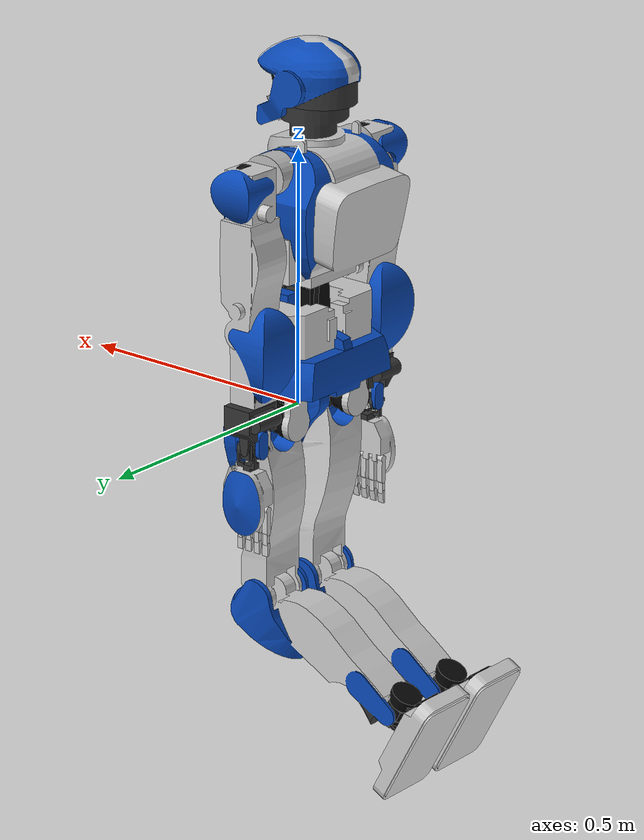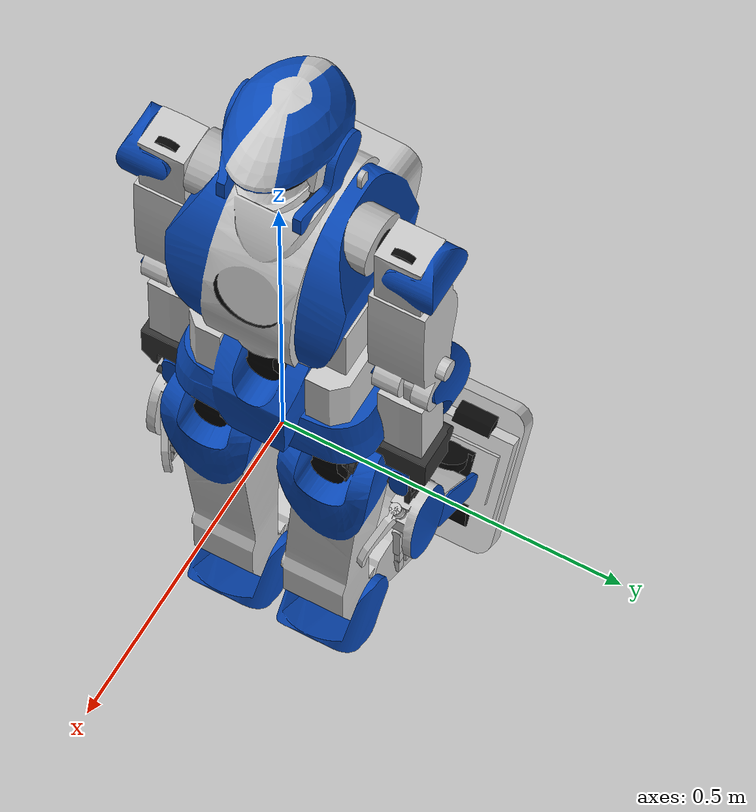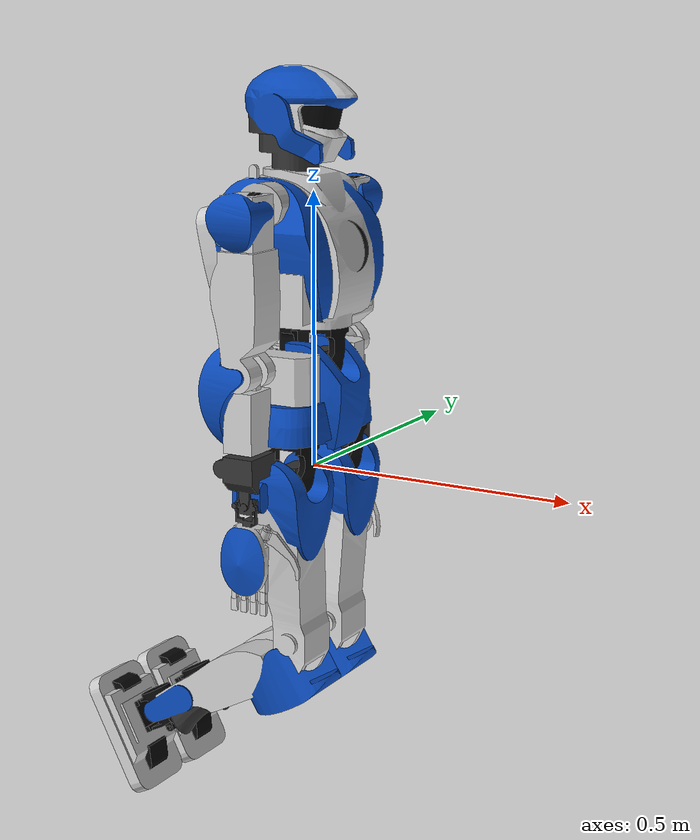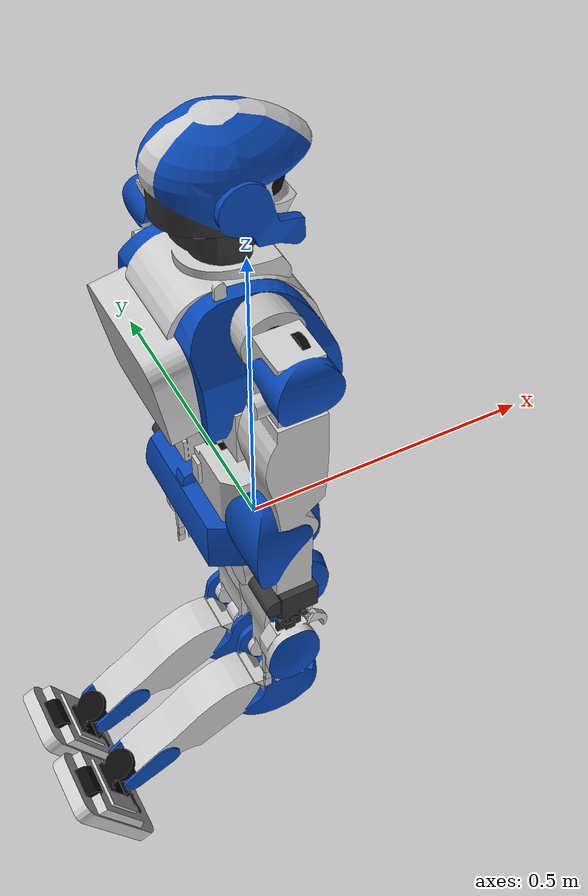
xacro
<?xml version="1.0"?>
<!--
   hrp4 URDF model

   FIXME: fill missing data: sole, gripper and sensors
  -->
<robot xmlns:xacro="http://ros.org/wiki/xacro" name="hrp4_flex">
  <xacro:include filename="$(find hrp4_description)/urdf/hrp4_common.xacro" />
  <xacro:include filename="$(find hrp4_description)/urdf/hrp4_fingers.xacro" />
  <xacro:include filename="$(find hrp4_description)/urdf/hrp4_feet_flex.xacro" />
</robot>

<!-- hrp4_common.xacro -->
<robot name="hrp4" xmlns:xacro="http://ros.org/wiki/xacro">
  <property name="M_PI" value="3.1415926535897931" />
  <link name="base_link"/>

  <link name="body">
    <inertial>
      <origin xyz="-0.0215609 0.00145914 0.14111505" rpy="0 0 0"/>
      <mass value="6.93472"/>
      <inertia ixx="0.05776087" ixy="7.331e-05" ixz="0.0014889" iyy="0.0285208" iyz="-0.00075717" izz="0.05527734" />
    </inertial>
    <visual>
      <origin xyz="0 0 0" rpy="0 0 0" />
      <geometry>
	<mesh filename="package://hrp4_description/meshes/WAIST_LINK.dae" />
      </geometry>
    </visual>
    <collision>
      <origin xyz="0 0 0" rpy="0 0 0" />
      <geometry>
	<mesh filename="package://hrp4_description/meshes/WAIST_LINK.dae" />
      </geometry>
    </collision>
  </link>

  <link name="R_HIP_Y_LINK">
    <inertial>
      <origin xyz="-0.01667657 2e-08 0.04993135" rpy="0 0 0"/>
      <mass value="1.1356"/>
      <inertia ixx="0.00151524" ixy="-2.8e-07" ixz="-0.00048566" iyy="0.00231285" iyz="-0" izz="0.00149651" />
    </inertial>
    <visual>
      <origin xyz="0 0 0" rpy="0 0 0" />
      <geometry>
	<mesh filename="package://hrp4_description/meshes/HIP_Y.dae" />
      </geometry>
    </visual>
    <collision>
      <origin xyz="0 0 0" rpy="0 0 0" />
      <geometry>
	<mesh filename="package://hrp4_description/meshes/HIP_Y.dae" />
      </geometry>
    </collision>
  </link>

  <link name="R_HIP_R_LINK">
    <inertial>
      <origin xyz="-0.00431692 0.00595121 -0.00052352" rpy="0 0 0"/>
      <mass value="0.58494148"/>
      <inertia ixx="0.00046475" ixy="-1.508e-05" ixz="-6.5e-07" iyy="0.00029804" iyz="2.39e-06" izz="0.00061763" />
    </inertial>
    <visual>
      <origin xyz="0 0 0" rpy="0 0 0" />
      <geometry>
	<mesh filename="package://hrp4_description/meshes/CHEST_P.dae" />
      </geometry>
    </visual>
    <collision>
      <origin xyz="0 0 0" rpy="0 0 0" />
      <geometry>
	<mesh filename="package://hrp4_description/meshes/CHEST_P.dae" />
      </geometry>
    </collision>
  </link>

  <link name="R_HIP_P_LINK">
    <inertial>
      <origin xyz="0.00401404 0.01530275 -0.18851723" rpy="0 0 0"/>
      <mass value="2.0648"/>
      <inertia ixx="0.03160432" ixy="-3.38e-06" ixz="0.00063965" iyy="0.03070237" iyz="0.00133966" izz="0.00275655" />
    </inertial>
    <visual>
      <origin xyz="0 0 0" rpy="0 0 0" />
      <geometry>
	<mesh filename="package://hrp4_description/meshes/R_HIP_P.dae" />
      </geometry>
    </visual>
    <collision>
      <origin xyz="0 0 0" rpy="0 0 0" />
      <geometry>
	<mesh filename="package://hrp4_description/meshes/R_HIP_P.dae" />
      </geometry>
    </collision>
  </link>

  <link name="R_KNEE_P_LINK">
    <inertial>
      <origin xyz="-0.01122115 -0.00133701 -0.15252868" rpy="0 0 0"/>
      <mass value="2.08123"/>
      <inertia ixx="0.01900442" ixy="-4.75e-06" ixz="-0.0014589" iyy="0.01944097" iyz="2.008e-05" izz="0.00189659" />
    </inertial>
    <visual>
      <origin xyz="0 0 0" rpy="0 0 0" />
      <geometry>
	<mesh filename="package://hrp4_description/meshes/R_KNEE_P.dae" />
      </geometry>
    </visual>
    <collision>
      <origin xyz="0 0 0" rpy="0 0 0" />
      <geometry>
	<mesh filename="package://hrp4_description/meshes/R_KNEE_P.dae" />
      </geometry>
    </collision>
  </link>

  <link name="R_ANKLE_P_LINK">
    <inertial>
      <origin xyz="-0.00368911 -0.00015844 0.00129883" rpy="0 0 0"/>
      <mass value="0.26784726"/>
      <inertia ixx="8.094e-05" ixy="-1.6e-07" ixz="-1.33e-06" iyy="0.00015522" iyz="-7e-08" izz="0.00017313" />
    </inertial>
    <visual>
      <origin xyz="0 0 0" rpy="0 0 0" />
      <geometry>
	<mesh filename="package://hrp4_description/meshes/L_ANKLE_P.dae" />
      </geometry>
    </visual>
    <collision>
      <origin xyz="0 0 0" rpy="0 0 0" />
      <geometry>
	<mesh filename="package://hrp4_description/meshes/L_ANKLE_P.dae" />
      </geometry>
    </collision>
  </link>

  <link name="R_ANKLE_R_LINK">
    <inertial>
      <origin xyz="-0.00340792 1e-08 -0.04591586" rpy="0 0 0"/>
      <mass value="0.72287828"/>
      <inertia ixx="0.00092215" ixy="0" ixz="0.00011963" iyy="0.00102289" iyz="0" izz="0.00089314" />
    </inertial>
    <visual>
      <origin xyz="0 0 0" rpy="0 0 0" />
      <geometry>
	<mesh filename="package://hrp4_description/meshes/R_ANKLE_R.dae" />
      </geometry>
    </visual>
    <collision>
      <origin xyz="0 0 0" rpy="0 0 0" />
      <geometry>
	<mesh filename="package://hrp4_description/meshes/R_ANKLE_R.dae" />
      </geometry>
    </collision>
  </link>

  <link name="r_sole"/>

  <link name="L_HIP_Y_LINK">
    <inertial>
      <origin xyz="-0.01667657 2e-08 0.04993135" rpy="0 0 0"/>
      <mass value="1.1356"/>
      <inertia ixx="0.00151524" ixy="-2.8e-07" ixz="-0.00048566" iyy="0.00231285" iyz="-0" izz="0.00149651" />
    </inertial>
    <visual>
      <origin xyz="0 0 0" rpy="0 0 0" />
      <geometry>
	<mesh filename="package://hrp4_description/meshes/HIP_Y.dae" />
      </geometry>
    </visual>
    <collision>
      <origin xyz="0 0 0" rpy="0 0 0" />
      <geometry>
	<mesh filename="package://hrp4_description/meshes/HIP_Y.dae" />
      </geometry>
    </collision>
  </link>

  <link name="L_HIP_R_LINK">
    <inertial>
      <origin xyz="-0.00431692 0.00595121 -0.00052352" rpy="0 0 0"/>
      <mass value="0.58494148"/>
      <inertia ixx="0.00046475" ixy="-1.508e-05" ixz="-6.5e-07" iyy="0.00029804" iyz="2.39e-06" izz="0.00061763" />
    </inertial>
    <visual>
      <origin xyz="0 0 0" rpy="0 0 0" />
      <geometry>
	<mesh filename="package://hrp4_description/meshes/CHEST_P.dae" />
      </geometry>
    </visual>
    <collision>
      <origin xyz="0 0 0" rpy="0 0 0" />
      <geometry>
	<mesh filename="package://hrp4_description/meshes/CHEST_P.dae" />
      </geometry>
    </collision>
  </link>

  <link name="L_HIP_P_LINK">
    <inertial>
      <origin xyz="0.00400906 -0.00541624 -0.18827632" rpy="0 0 0"/>
      <mass value="2.06366"/>
      <inertia ixx="0.03174381" ixy="9.784e-05" ixz="0.00063909" iyy="0.03068623" iyz="-0.00254187" izz="0.00291548" />
    </inertial>
    <visual>
      <origin xyz="0 0 0" rpy="0 0 0" />
      <geometry>
	<mesh filename="package://hrp4_description/meshes/L_HIP_P.dae" />
      </geometry>
    </visual>
    <collision>
      <origin xyz="0 0 0" rpy="0 0 0" />
      <geometry>
	<mesh filename="package://hrp4_description/meshes/L_HIP_P.dae" />
      </geometry>
    </collision>
  </link>

  <link name="L_KNEE_P_LINK">
    <inertial>
      <origin xyz="-0.01122115 -0.00133701 -0.15252868" rpy="0 0 0"/>
      <mass value="2.08123"/>
      <inertia ixx="0.01900442" ixy="-4.75e-06" ixz="-0.0014589" iyy="0.01944097" iyz="2.008e-05" izz="0.00189659" />
    </inertial>
    <visual>
      <origin xyz="0 0 0" rpy="0 0 0" />
      <geometry>
	<mesh filename="package://hrp4_description/meshes/L_KNEE_P.dae" />
      </geometry>
    </visual>
    <collision>
      <origin xyz="0 0 0" rpy="0 0 0" />
      <geometry>
	<mesh filename="package://hrp4_description/meshes/L_KNEE_P.dae" />
      </geometry>
    </collision>
  </link>

  <link name="L_ANKLE_P_LINK">
    <inertial>
      <origin xyz="-0.00368911 -0.00015844 0.00129883" rpy="0 0 0"/>
      <mass value="0.26784726"/>
      <inertia ixx="8.094e-05" ixy="-1.6e-07" ixz="-1.33e-06" iyy="0.00015522" iyz="-7e-08" izz="0.00017313" />
    </inertial>
    <visual>
      <origin xyz="0 0 0" rpy="0 0 0" />
      <geometry>
	<mesh filename="package://hrp4_description/meshes/L_ANKLE_P.dae" />
      </geometry>
    </visual>
    <collision>
      <origin xyz="0 0 0" rpy="0 0 0" />
      <geometry>
	<mesh filename="package://hrp4_description/meshes/L_ANKLE_P.dae" />
      </geometry>
    </collision>
  </link>

  <link name="L_ANKLE_R_LINK">
    <inertial>
      <origin xyz="-0.00340792 0 -0.04591586" rpy="0 0 0"/>
      <mass value="0.72287828"/>
      <inertia ixx="0.00092215" ixy="-0" ixz="0.00011963" iyy="0.00102289" iyz="-0" izz="0.00089314" />
    </inertial>
    <visual>
      <origin xyz="0 0 0" rpy="0 0 0" />
      <geometry>
	<mesh filename="package://hrp4_description/meshes/L_ANKLE_R.dae" />
      </geometry>
    </visual>
    <collision>
      <origin xyz="0 0 0" rpy="0 0 0" />
      <geometry>
	<mesh filename="package://hrp4_description/meshes/L_ANKLE_R.dae" />
      </geometry>
    </collision>
  </link>

  <link name="l_sole"/>

  <link name="CHEST_P_LINK">
    <inertial>
      <origin xyz="-0.00442006 0.00280574 0.03664874" rpy="0 0 0"/>
      <mass value="1.24072"/>
      <inertia ixx="0.00250228" ixy="-1.572e-05" ixz="-1.986e-05" iyy="0.00266086" iyz="0.00013179" izz="0.0015461" />
    </inertial>
    <visual>
      <origin xyz="0 0 0" rpy="0 0 0" />
      <geometry>
	<mesh filename="package://hrp4_description/meshes/CHEST_P.dae" />
      </geometry>
    </visual>
    <visual>
      <origin xyz="0 0 0" rpy="0 0 0" />
      <geometry>
	<mesh filename="package://hrp4_description/meshes/CHEST_R.dae" />
      </geometry>
    </visual>
    <collision>
      <origin xyz="0 0 0" rpy="0 0 0" />
      <geometry>
	<mesh filename="package://hrp4_description/meshes/CHEST_P.dae" />
      </geometry>
    </collision>
    <collision>
      <origin xyz="0 0 0" rpy="0 0 0" />
      <geometry>
	<mesh filename="package://hrp4_description/meshes/CHEST_P.dae" />
      </geometry>
    </collision>
  </link>

  <link name="torso">
    <inertial>
      <origin xyz="-0.02868847 -0.00245957 0.20400698" rpy="0 0 0"/>
      <mass value="6.67348"/>
      <inertia ixx="0.06656275" ixy="-9.681e-05" ixz="0.00599103" iyy="0.05508979" iyz="-0.00017557" izz="0.04262738" />
    </inertial>
    <visual>
      <origin xyz="0 0 0" rpy="0 0 0" />
      <geometry>
	<mesh filename="package://hrp4_description/meshes/CHEST_Y.dae" />
      </geometry>
    </visual>
    <collision>
      <origin xyz="0 0 0" rpy="0 0 0" />
      <geometry>
	<mesh filename="package://hrp4_description/meshes/CHEST_Y.dae" />
      </geometry>
    </collision>
  </link>

  <link name="NECK_Y_LINK">
    <inertial>
      <origin xyz="-0.01142441 0.00157484 -0.02134892" rpy="0 0 0"/>
      <mass value="0.41214752"/>
      <inertia ixx="0.00061014" ixy="4.35e-06" ixz="7.329e-05" iyy="0.00068918" iyz="-1.384e-05" izz="0.00040587" />
    </inertial>
    <visual>
      <origin xyz="0 0 0" rpy="0 0 0" />
      <geometry>
	<mesh filename="package://hrp4_description/meshes/NECK_Y.dae" />
      </geometry>
    </visual>
    <collision>
      <origin xyz="0 0 0" rpy="0 0 0" />
      <geometry>
	<mesh filename="package://hrp4_description/meshes/NECK_Y.dae" />
      </geometry>
    </collision>
  </link>

  <link name="NECK_P_LINK">
    <inertial>
      <origin xyz="0.00532833 -0.00053047 0.0176936" rpy="0 0 0"/>
      <mass value="0.22297511"/>
      <inertia ixx="0.00069884" ixy="-7e-07" ixz="3.33e-05" iyy="0.00093286" iyz="-1.51e-06" izz="0.00100342" />
    </inertial>
    <visual>
      <origin xyz="0 0 0" rpy="0 0 0" />
      <geometry>
	<mesh filename="package://hrp4_description/meshes/NECK_P.dae" />
      </geometry>
    </visual>
    <collision>
      <origin xyz="0 0 0" rpy="0 0 0" />
      <geometry>
	<mesh filename="package://hrp4_description/meshes/NECK_P.dae" />
      </geometry>
    </collision>
  </link>

  <link name="xtion_link"/>

  <link name="R_SHOULDER_P_LINK">
    <inertial>
      <origin xyz="0.00141599 0.04257567 0.00031503" rpy="0 0 0"/>
      <mass value="0.42049079"/>
      <inertia ixx="0.00044203" ixy="-4.93e-06" ixz="-6.1e-07" iyy="0.00014181" iyz="-3.34e-06" izz="0.00044502" />
    </inertial>
    <visual>
      <origin xyz="0 0 0" rpy="0 0 0" />
      <geometry>
	<mesh filename="package://hrp4_description/meshes/R_SHOULDER_P.dae" />
      </geometry>
    </visual>
    <collision>
      <origin xyz="0 0 0" rpy="0 0 0" />
      <geometry>
	<mesh filename="package://hrp4_description/meshes/R_SHOULDER_P.dae" />
      </geometry>
    </collision>
  </link>

  <link name="R_SHOULDER_R_LINK">
    <inertial>
      <origin xyz="0.00019752 -0.00272557 -0.04191141" rpy="0 0 0"/>
      <mass value="0.52070922"/>
      <inertia ixx="0.00062647" ixy="-7.3e-06" ixz="-6.476e-05" iyy="0.00071812" iyz="1.818e-05" izz="0.00029856" />
    </inertial>
    <visual>
      <origin xyz="0 0 0" rpy="0 0 0" />
      <geometry>
	<mesh filename="package://hrp4_description/meshes/R_SHOULDER_R.dae" />
      </geometry>
    </visual>
    <collision>
      <origin xyz="0 0 0" rpy="0 0 0" />
      <geometry>
	<mesh filename="package://hrp4_description/meshes/R_SHOULDER_R.dae" />
      </geometry>
    </collision>
  </link>

  <link name="R_SHOULDER_Y_LINK">
    <inertial>
      <origin xyz="-0.00273859 -0.00036268 -0.17426645" rpy="0 0 0"/>
      <mass value="1.0874"/>
      <inertia ixx="0.00553694" ixy="1.18e-05" ixz="-4.295e-05" iyy="0.00556222" iyz="-9.379e-05" izz="0.00071841" />
    </inertial>
    <visual>
      <origin xyz="0 0 0" rpy="0 0 0" />
      <geometry>
	<mesh filename="package://hrp4_description/meshes/SHOULDER_Y.dae" />
      </geometry>
    </visual>
    <collision>
      <origin xyz="0 0 0" rpy="0 0 0" />
      <geometry>
	<mesh filename="package://hrp4_description/meshes/SHOULDER_Y.dae" />
      </geometry>
    </collision>
  </link>

  <link name="R_ELBOW_P_LINK">
    <inertial>
      <origin xyz="-0.01222096 0.00049299 -0.07271909" rpy="0 0 0"/>
      <mass value="0.6594031"/>
      <inertia ixx="0.00121955" ixy="3.9e-06" ixz="4.22e-05" iyy="0.00135563" iyz="-1.497e-05" izz="0.00047041" />
    </inertial>
    <visual>
      <origin xyz="0 0 0" rpy="0 0 0" />
      <geometry>
	<mesh filename="package://hrp4_description/meshes/ELBOW_P.dae" />
      </geometry>
    </visual>
    <collision>
      <origin xyz="0 0 0" rpy="0 0 0" />
      <geometry>
	<mesh filename="package://hrp4_description/meshes/ELBOW_P.dae" />
      </geometry>
    </collision>
  </link>

  <link name="R_WRIST_Y_LINK">
    <inertial>
      <origin xyz="-0.00749481 9.419e-05 -0.17044123" rpy="0 0 0"/>
      <mass value="0.38384092"/>
      <inertia ixx="0.00027044" ixy="-9.74e-06" ixz="1.069e-05" iyy="0.00027334" iyz="1.745e-05" izz="0.00022347" />
    </inertial>
    <visual>
      <origin xyz="0 0 0" rpy="0 0 0" />
      <geometry>
	<mesh filename="package://hrp4_description/meshes/R_WRIST_Y.dae" />
      </geometry>
    </visual>
    <collision>
      <origin xyz="0 0 0" rpy="0 0 0" />
      <geometry>
	<mesh filename="package://hrp4_description/meshes/R_WRIST_Y.dae" />
      </geometry>
    </collision>
  </link>

  <link name="R_WRIST_P_LINK">
    <inertial>
      <origin xyz="0.00255098 0.00162183 0.01074678" rpy="0 0 0"/>
      <mass value="0.25425855"/>
      <inertia ixx="8.763e-05" ixy="1.53e-06" ixz="-3.48e-06" iyy="9.159e-05" iyz="4.48e-06" izz="5.571e-05" />
    </inertial>
    <visual>
      <origin xyz="0 0 0" rpy="0 0 0" />
      <geometry>
	<mesh filename="package://hrp4_description/meshes/WRIST_P.dae" />
      </geometry>
    </visual>
    <collision>
      <origin xyz="0 0 0" rpy="0 0 0" />
      <geometry>
	<mesh filename="package://hrp4_description/meshes/WRIST_P.dae" />
      </geometry>
    </collision>
  </link>

  <link name="r_wrist">
    <inertial>
      <origin xyz="-0.00357307 -0.00756083 -0.07562434" rpy="0 0 0"/>
      <mass value="0.38811052"/>
      <inertia ixx="0.00041744" ixy="-2.58e-06" ixz="-3.079e-05" iyy="0.00053272" iyz="-4.178e-05" izz="0.00022506" />
    </inertial>
    <visual>
      <origin xyz="0 0 0" rpy="0 0 0" />
      <geometry>
	<mesh filename="package://hrp4_description/meshes/R_WRIST_R.dae" />
      </geometry>
    </visual>
    <collision>
      <origin xyz="0 0 0" rpy="0 0 0" />
      <geometry>
	<mesh filename="package://hrp4_description/meshes/R_WRIST_R.dae" />
      </geometry>
    </collision>
  </link>

  <link name="R_HAND_J0_LINK">
    <inertial>
      <origin xyz="0.03905018 0.0103447 -0.02583122" rpy="0 0 0"/>
      <mass value="0.02982352"/>
      <inertia ixx="1.307e-05" ixy="-6.2e-06" ixz="1.249e-05" iyy="2.885e-05" iyz="4.36e-06" izz="2.119e-05" />
    </inertial>
    <visual>
      <origin xyz="0 0 0" rpy="0 0 0" />
      <geometry>
	<mesh filename="package://hrp4_description/meshes/R_THUMB.dae" />
      </geometry>
    </visual>
    <collision>
      <origin xyz="0 0 0" rpy="0 0 0" />
      <geometry>
	<mesh filename="package://hrp4_description/meshes/R_THUMB.dae" />
      </geometry>
    </collision>
  </link>

  <link name="R_HAND_J1_LINK">
    <inertial>
      <origin xyz="-0.00520681 -8.854e-05 -0.01902284" rpy="0 0 0"/>
      <mass value="0.07696483"/>
      <inertia ixx="2.17e-05" ixy="-3e-08" ixz="-2.2e-07" iyy="5.741e-05" iyz="1e-07" izz="3.728e-05" />
    </inertial>
    <visual>
      <origin xyz="0 0 0" rpy="0 0 0" />
      <geometry>
	<mesh filename="package://hrp4_description/meshes/R_F1.dae" />
      </geometry>
    </visual>
    <collision>
      <origin xyz="0 0 0" rpy="0 0 0" />
      <geometry>
	<mesh filename="package://hrp4_description/meshes/R_F1.dae" />
      </geometry>
    </collision>
  </link>

  <link name="R_F22_LINK">
    <inertial>
      <origin xyz="-0.00031853 0.00034526 -0.01168186" rpy="0 0 0"/>
      <mass value="0.00446884"/>
      <inertia ixx="3.2e-07" ixy="-0" ixz="-0" iyy="3.4e-07" iyz="-0" izz="9e-08" />
    </inertial>
    <visual>
      <origin xyz="0 0 0" rpy="0 0 0" />
      <geometry>
	<mesh filename="package://hrp4_description/meshes/F2.dae" />
      </geometry>
    </visual>
    <collision>
      <origin xyz="0 0 0" rpy="0 0 0" />
      <geometry>
	<mesh filename="package://hrp4_description/meshes/F2.dae" />
      </geometry>
    </collision>
  </link>

  <link name="R_F23_LINK">
    <inertial>
      <origin xyz="-0.00035576 -0.00103228 -0.00714888" rpy="0 0 0"/>
      <mass value="0.0028745"/>
      <inertia ixx="1.6e-07" ixy="0" ixz="1e-08" iyy="2.1e-07" iyz="-2e-08" izz="7e-08" />
    </inertial>
    <visual>
      <origin xyz="0 0 0" rpy="0 0 0" />
      <geometry>
	<mesh filename="package://hrp4_description/meshes/F3.dae" />
      </geometry>
    </visual>
    <collision>
      <origin xyz="0 0 0" rpy="0 0 0" />
      <geometry>
	<mesh filename="package://hrp4_description/meshes/F3.dae" />
      </geometry>
    </collision>
  </link>

  <link name="R_F32_LINK">
    <inertial>
      <origin xyz="-0.00031853 0.00034526 -0.01168186" rpy="0 0 0"/>
      <mass value="0.00446884"/>
      <inertia ixx="3.2e-07" ixy="-0" ixz="-0" iyy="3.4e-07" iyz="-0" izz="9e-08" />
    </inertial>
    <visual>
      <origin xyz="0 0 0" rpy="0 0 0" />
      <geometry>
	<mesh filename="package://hrp4_description/meshes/F2.dae" />
      </geometry>
    </visual>
    <collision>
      <origin xyz="0 0 0" rpy="0 0 0" />
      <geometry>
	<mesh filename="package://hrp4_description/meshes/F2.dae" />
      </geometry>
    </collision>
  </link>

  <link name="R_F33_LINK">
    <inertial>
      <origin xyz="-0.00035576 -0.00103228 -0.00714888" rpy="0 0 0"/>
      <mass value="0.0028745"/>
      <inertia ixx="1.6e-07" ixy="0" ixz="1e-08" iyy="2.1e-07" iyz="-2e-08" izz="7e-08" />
    </inertial>
    <visual>
      <origin xyz="0 0 0" rpy="0 0 0" />
      <geometry>
	<mesh filename="package://hrp4_description/meshes/F3.dae" />
      </geometry>
    </visual>
    <collision>
      <origin xyz="0 0 0" rpy="0 0 0" />
      <geometry>
	<mesh filename="package://hrp4_description/meshes/F3.dae" />
      </geometry>
    </collision>
  </link>

  <link name="R_F42_LINK">
    <inertial>
      <origin xyz="-0.00031853 0.00034526 -0.01168186" rpy="0 0 0"/>
      <mass value="0.00446884"/>
      <inertia ixx="3.2e-07" ixy="-0" ixz="-0" iyy="3.4e-07" iyz="-0" izz="9e-08" />
    </inertial>
    <visual>
      <origin xyz="0 0 0" rpy="0 0 0" />
      <geometry>
	<mesh filename="package://hrp4_description/meshes/F2.dae" />
      </geometry>
    </visual>
    <collision>
      <origin xyz="0 0 0" rpy="0 0 0" />
      <geometry>
	<mesh filename="package://hrp4_description/meshes/F2.dae" />
      </geometry>
    </collision>
  </link>

  <link name="R_F43_LINK">
    <inertial>
      <origin xyz="-0.00035576 -0.00103228 -0.00714888" rpy="0 0 0"/>
      <mass value="0.0028745"/>
      <inertia ixx="1.6e-07" ixy="0" ixz="1e-08" iyy="2.1e-07" iyz="-2e-08" izz="7e-08" />
    </inertial>
    <visual>
      <origin xyz="0 0 0" rpy="0 0 0" />
      <geometry>
	<mesh filename="package://hrp4_description/meshes/F3.dae" />
      </geometry>
    </visual>
    <collision>
      <origin xyz="0 0 0" rpy="0 0 0" />
      <geometry>
	<mesh filename="package://hrp4_description/meshes/F3.dae" />
      </geometry>
    </collision>
  </link>

  <link name="R_F52_LINK">
    <inertial>
      <origin xyz="-0.00031853 0.00034526 -0.01168186" rpy="0 0 0"/>
      <mass value="0.00446884"/>
      <inertia ixx="3.2e-07" ixy="-0" ixz="-0" iyy="3.4e-07" iyz="-0" izz="9e-08" />
    </inertial>
    <visual>
      <origin xyz="0 0 0" rpy="0 0 0" />
      <geometry>
	<mesh filename="package://hrp4_description/meshes/F2.dae" />
      </geometry>
    </visual>
    <collision>
      <origin xyz="0 0 0" rpy="0 0 0" />
      <geometry>
	<mesh filename="package://hrp4_description/meshes/F2.dae" />
      </geometry>
    </collision>
  </link>

  <link name="R_F53_LINK">
    <inertial>
      <origin xyz="-0.00035576 -0.00103228 -0.00714888" rpy="0 0 0"/>
      <mass value="0.0028745"/>
      <inertia ixx="1.6e-07" ixy="0" ixz="1e-08" iyy="2.1e-07" iyz="-2e-08" izz="7e-08" />
    </inertial>
    <visual>
      <origin xyz="0 0 0" rpy="0 0 0" />
      <geometry>
	<mesh filename="package://hrp4_description/meshes/F3.dae" />
      </geometry>
    </visual>
    <collision>
      <origin xyz="0 0 0" rpy="0 0 0" />
      <geometry>
	<mesh filename="package://hrp4_description/meshes/F3.dae" />
      </geometry>
    </collision>
  </link>

  <link name="L_SHOULDER_P_LINK">
    <inertial>
      <origin xyz="0.00141599 -0.04257567 -0.00031503" rpy="0 0 0"/>
      <mass value="0.42049079"/>
      <inertia ixx="0.00044203" ixy="4.93e-06" ixz="6.1e-07" iyy="0.00014181" iyz="-3.34e-06" izz="0.00044502" />
    </inertial>
    <visual>
      <origin xyz="0 0 0" rpy="0 0 0" />
      <geometry>
	<mesh filename="package://hrp4_description/meshes/L_SHOULDER_P.dae" />
      </geometry>
    </visual>
    <collision>
      <origin xyz="0 0 0" rpy="0 0 0" />
      <geometry>
	<mesh filename="package://hrp4_description/meshes/L_SHOULDER_P.dae" />
      </geometry>
    </collision>
  </link>

  <link name="L_SHOULDER_R_LINK">
    <inertial>
      <origin xyz="0.00019752 -8.916e-05 -0.04191141" rpy="0 0 0"/>
      <mass value="0.52070922"/>
      <inertia ixx="0.00063033" ixy="-6.01e-06" ixz="-6.476e-05" iyy="0.00071812" iyz="-2.895e-05" izz="0.00030242" />
    </inertial>
    <visual>
      <origin xyz="0 0 0" rpy="0 0 0" />
      <geometry>
	<mesh filename="package://hrp4_description/meshes/L_SHOULDER_R.dae" />
      </geometry>
    </visual>
    <collision>
      <origin xyz="0 0 0" rpy="0 0 0" />
      <geometry>
	<mesh filename="package://hrp4_description/meshes/L_SHOULDER_R.dae" />
      </geometry>
    </collision>
  </link>

  <link name="L_SHOULDER_Y_LINK">
    <inertial>
      <origin xyz="-0.00273859 -0.00036268 -0.17426645" rpy="0 0 0"/>
      <mass value="1.0874"/>
      <inertia ixx="0.00553694" ixy="1.18e-05" ixz="-4.295e-05" iyy="0.00556222" iyz="-9.379e-05" izz="0.00071841" />
    </inertial>
    <visual>
      <origin xyz="0 0 0" rpy="0 0 0" />
      <geometry>
	<mesh filename="package://hrp4_description/meshes/SHOULDER_Y.dae" />
      </geometry>
    </visual>
    <collision>
      <origin xyz="0 0 0" rpy="0 0 0" />
      <geometry>
	<mesh filename="package://hrp4_description/meshes/SHOULDER_Y.dae" />
      </geometry>
    </collision>
  </link>

  <link name="L_ELBOW_P_LINK">
    <inertial>
      <origin xyz="-0.01222096 0.00049299 -0.07271909" rpy="0 0 0"/>
      <mass value="0.6594031"/>
      <inertia ixx="0.00121955" ixy="3.9e-06" ixz="4.22e-05" iyy="0.00135563" iyz="-1.497e-05" izz="0.00047041" />
    </inertial>
    <visual>
      <origin xyz="0 0 0" rpy="0 0 0" />
      <geometry>
	<mesh filename="package://hrp4_description/meshes/ELBOW_P.dae" />
      </geometry>
    </visual>
    <collision>
      <origin xyz="0 0 0" rpy="0 0 0" />
      <geometry>
	<mesh filename="package://hrp4_description/meshes/ELBOW_P.dae" />
      </geometry>
    </collision>
  </link>

  <link name="L_WRIST_Y_LINK">
    <inertial>
      <origin xyz="-0.00749574 -9.418e-05 -0.17044123" rpy="0 0 0"/>
      <mass value="0.38384092"/>
      <inertia ixx="0.00027044" ixy="9.76e-06" ixz="1.07e-05" iyy="0.00027334" iyz="-1.745e-05" izz="0.00022346" />
    </inertial>
    <visual>
      <origin xyz="0 0 0" rpy="0 0 0" />
      <geometry>
	<mesh filename="package://hrp4_description/meshes/L_WRIST_Y.dae" />
      </geometry>
    </visual>
    <collision>
      <origin xyz="0 0 0" rpy="0 0 0" />
      <geometry>
	<mesh filename="package://hrp4_description/meshes/L_WRIST_Y.dae" />
      </geometry>
    </collision>
  </link>

  <link name="L_WRIST_P_LINK">
    <inertial>
      <origin xyz="-0.00255098 -0.00162183 0.01074678" rpy="0 0 0"/>
      <mass value="0.25425855"/>
      <inertia ixx="8.763e-05" ixy="1.53e-06" ixz="3.48e-06" iyy="9.159e-05" iyz="-4.48e-06" izz="5.571e-05" />
    </inertial>
    <visual>
      <origin xyz="0 0 0" rpy="0 0 0" />
      <geometry>
	<mesh filename="package://hrp4_description/meshes/WRIST_P.dae" />
      </geometry>
    </visual>
    <collision>
      <origin xyz="0 0 0" rpy="0 0 0" />
      <geometry>
	<mesh filename="package://hrp4_description/meshes/WRIST_P.dae" />
      </geometry>
    </collision>
  </link>

  <link name="l_wrist">
    <inertial>
      <origin xyz="-0.00241915 0.00756006 -0.07562466" rpy="0 0 0"/>
      <mass value="0.38811052"/>
      <inertia ixx="0.00041745" ixy="4.71e-06" ixz="-6.41e-05" iyy="0.00053559" iyz="4.177e-05" izz="0.00022792" />
    </inertial>
    <visual>
      <origin xyz="0 0 0" rpy="0 0 0" />
      <geometry>
	<mesh filename="package://hrp4_description/meshes/L_WRIST_R.dae" />
      </geometry>
    </visual>
    <collision>
      <origin xyz="0 0 0" rpy="0 0 0" />
      <geometry>
	<mesh filename="package://hrp4_description/meshes/L_WRIST_R.dae" />
      </geometry>
    </collision>
  </link>

  <link name="L_HAND_J0_LINK">
    <inertial>
      <origin xyz="0.03905018 -0.0103447 -0.02583122" rpy="0 0 0"/>
      <mass value="0.02982352"/>
      <inertia ixx="1.307e-05" ixy="6.2e-06" ixz="1.249e-05" iyy="2.885e-05" iyz="-4.36e-06" izz="2.119e-05" />
    </inertial>
    <visual>
      <origin xyz="0 0 0" rpy="0 0 0" />
      <geometry>
	<mesh filename="package://hrp4_description/meshes/L_THUMB.dae" />
      </geometry>
    </visual>
    <collision>
      <origin xyz="0 0 0" rpy="0 0 0" />
      <geometry>
	<mesh filename="package://hrp4_description/meshes/L_THUMB.dae" />
      </geometry>
    </collision>
  </link>

  <link name="L_HAND_J1_LINK">
    <inertial>
      <origin xyz="-0.00479332 8.854e-05 -0.01902284" rpy="0 0 0"/>
      <mass value="0.07696483"/>
      <inertia ixx="2.17e-05" ixy="-3e-08" ixz="2.3e-07" iyy="5.741e-05" iyz="-1e-07" izz="3.728e-05" />
    </inertial>
    <visual>
      <origin xyz="0 0 0" rpy="0 0 0" />
      <geometry>
	<mesh filename="package://hrp4_description/meshes/L_F1.dae" />
      </geometry>
    </visual>
    <collision>
      <origin xyz="0 0 0" rpy="0 0 0" />
      <geometry>
	<mesh filename="package://hrp4_description/meshes/L_F1.dae" />
      </geometry>
    </collision>
  </link>

  <link name="L_F22_LINK">
    <inertial>
      <origin xyz="0.00031853 -0.00034526 -0.01168186" rpy="0 0 0"/>
      <mass value="0.00446884"/>
      <inertia ixx="3.2e-07" ixy="-0" ixz="0" iyy="3.4e-07" iyz="0" izz="9e-08" />
    </inertial>
    <visual>
      <origin xyz="0 0 0" rpy="0 0 0" />
      <geometry>
	<mesh filename="package://hrp4_description/meshes/F2.dae" />
      </geometry>
    </visual>
    <collision>
      <origin xyz="0 0 0" rpy="0 0 0" />
      <geometry>
	<mesh filename="package://hrp4_description/meshes/F2.dae" />
      </geometry>
    </collision>
  </link>

  <link name="L_F23_LINK">
    <inertial>
      <origin xyz="0.00035576 0.00103228 -0.00714888" rpy="0 0 0"/>
      <mass value="0.0028745"/>
      <inertia ixx="1.6e-07" ixy="0" ixz="-1e-08" iyy="2.1e-07" iyz="2e-08" izz="7e-08" />
    </inertial>
    <visual>
      <origin xyz="0 0 0" rpy="0 0 0" />
      <geometry>
	<mesh filename="package://hrp4_description/meshes/F3.dae" />
      </geometry>
    </visual>
    <collision>
      <origin xyz="0 0 0" rpy="0 0 0" />
      <geometry>
	<mesh filename="package://hrp4_description/meshes/F3.dae" />
      </geometry>
    </collision>
  </link>

  <link name="L_F32_LINK">
    <inertial>
      <origin xyz="0.00031853 -0.00034526 -0.01168186" rpy="0 0 0"/>
      <mass value="0.00446884"/>
      <inertia ixx="3.2e-07" ixy="-0" ixz="0" iyy="3.4e-07" iyz="0" izz="9e-08" />
    </inertial>
    <visual>
      <origin xyz="0 0 0" rpy="0 0 0" />
      <geometry>
	<mesh filename="package://hrp4_description/meshes/F2.dae" />
      </geometry>
    </visual>
    <collision>
      <origin xyz="0 0 0" rpy="0 0 0" />
      <geometry>
	<mesh filename="package://hrp4_description/meshes/F2.dae" />
      </geometry>
    </collision>
  </link>

  <link name="L_F33_LINK">
    <inertial>
      <origin xyz="0.00035576 0.00103228 -0.00714888" rpy="0 0 0"/>
      <mass value="0.0028745"/>
      <inertia ixx="1.6e-07" ixy="0" ixz="-1e-08" iyy="2.1e-07" iyz="2e-08" izz="7e-08" />
    </inertial>
    <visual>
      <origin xyz="0 0 0" rpy="0 0 0" />
      <geometry>
	<mesh filename="package://hrp4_description/meshes/F3.dae" />
      </geometry>
    </visual>
    <collision>
      <origin xyz="0 0 0" rpy="0 0 0" />
      <geometry>
	<mesh filename="package://hrp4_description/meshes/F3.dae" />
      </geometry>
    </collision>
  </link>

  <link name="L_F42_LINK">
    <inertial>
      <origin xyz="0.00031853 -0.00034526 -0.01168186" rpy="0 0 0"/>
      <mass value="0.00446884"/>
      <inertia ixx="3.2e-07" ixy="-0" ixz="0" iyy="3.4e-07" iyz="0" izz="9e-08" />
    </inertial>
    <visual>
      <origin xyz="0 0 0" rpy="0 0 0" />
      <geometry>
	<mesh filename="package://hrp4_description/meshes/F2.dae" />
      </geometry>
    </visual>
    <collision>
      <origin xyz="0 0 0" rpy="0 0 0" />
      <geometry>
	<mesh filename="package://hrp4_description/meshes/F2.dae" />
      </geometry>
    </collision>
  </link>

  <link name="L_F43_LINK">
    <inertial>
      <origin xyz="0.00035576 0.00103228 -0.00714888" rpy="0 0 0"/>
      <mass value="0.0028745"/>
      <inertia ixx="1.6e-07" ixy="0" ixz="-1e-08" iyy="2.1e-07" iyz="2e-08" izz="7e-08" />
    </inertial>
    <visual>
      <origin xyz="0 0 0" rpy="0 0 0" />
      <geometry>
	<mesh filename="package://hrp4_description/meshes/F3.dae" />
      </geometry>
    </visual>
    <collision>
      <origin xyz="0 0 0" rpy="0 0 0" />
      <geometry>
	<mesh filename="package://hrp4_description/meshes/F3.dae" />
      </geometry>
    </collision>
  </link>

  <link name="L_F52_LINK">
    <inertial>
      <origin xyz="0.00031853 -0.00034526 -0.01168186" rpy="0 0 0"/>
      <mass value="0.00446884"/>
      <inertia ixx="3.2e-07" ixy="-0" ixz="0" iyy="3.4e-07" iyz="0" izz="9e-08" />
    </inertial>
    <visual>
      <origin xyz="0 0 0" rpy="0 0 0" />
      <geometry>
	<mesh filename="package://hrp4_description/meshes/F2.dae" />
      </geometry>
    </visual>
    <collision>
      <origin xyz="0 0 0" rpy="0 0 0" />
      <geometry>
	<mesh filename="package://hrp4_description/meshes/F2.dae" />
      </geometry>
    </collision>
  </link>

  <link name="L_F53_LINK">
    <inertial>
      <origin xyz="0.00035576 0.00103228 -0.00714888" rpy="0 0 0"/>
      <mass value="0.0028745"/>
      <inertia ixx="1.6e-07" ixy="0" ixz="-1e-08" iyy="2.1e-07" iyz="2e-08" izz="7e-08" />
    </inertial>
    <visual>
      <origin xyz="0 0 0" rpy="0 0 0" />
      <geometry>
	<mesh filename="package://hrp4_description/meshes/F3.dae" />
      </geometry>
    </visual>
    <collision>
      <origin xyz="0 0 0" rpy="0 0 0" />
      <geometry>
	<mesh filename="package://hrp4_description/meshes/F3.dae" />
      </geometry>
    </collision>
  </link>

  <!--   Joints following below -->

  <joint name="waist" type="fixed">
    <parent link="base_link"/>
    <child link="body"/>
    <origin xyz="0 0 0" rpy="0 0 0"/>
  </joint>
  <joint name="R_HIP_Y" type="revolute">
    <origin xyz="0 -0.0875 0" rpy="0 0 0"/>
    <axis xyz="0 0 1"/>
    <parent link="body"/>
    <child link="R_HIP_Y_LINK"/>
    <limit effort="41.65" lower="-0.78539815" upper="0.78539815" velocity="${48.5 * M_PI / 30}" />
  </joint>

  <joint name="R_HIP_R" type="revolute">
    <origin xyz="0 0 0" rpy="0 0 0"/>
    <axis xyz="1 0 0"/>
    <parent link="R_HIP_Y_LINK"/>
    <child link="R_HIP_R_LINK"/>
    <limit effort="224.91" lower="-0.436332305555556" upper="0.436332305555556" velocity="${27 * M_PI / 30}" />
  </joint>

  <joint name="R_HIP_P" type="revolute">
    <origin xyz="0 0 0" rpy="0 0 0"/>
    <axis xyz="0 1 0"/>
    <parent link="R_HIP_R_LINK"/>
    <child link="R_HIP_P_LINK"/>
    <limit effort="114.95" lower="-1.34390350111111" upper="0.418879013333333" velocity="${52.7 * M_PI / 30}" />
  </joint>

  <joint name="R_KNEE_P" type="revolute">
    <origin xyz="0 0.01905 -0.358" rpy="0 0 0"/>
    <axis xyz="0 1 0"/>
    <parent link="R_HIP_P_LINK"/>
    <child link="R_KNEE_P_LINK"/>
    <limit effort="242.76" lower="0.0122173045555556" upper="2.17642554011111" velocity="${25 * M_PI / 30}" />
  </joint>

  <joint name="R_ANKLE_P" type="revolute">
    <origin xyz="0 0 -0.341150992963526" rpy="0 0 0"/>
    <axis xyz="0 1 0"/>
    <parent link="R_KNEE_P_LINK"/>
    <child link="R_ANKLE_P_LINK"/>
    <limit effort="163.41" lower="-0.989601669" upper="0.267035371" velocity="${45 * M_PI / 30}" />
  </joint>

  <joint name="R_ANKLE_R" type="revolute">
    <origin xyz="0 0 0" rpy="0 0 0"/>
    <axis xyz="1 0 0"/>
    <parent link="R_ANKLE_P_LINK"/>
    <child link="R_ANKLE_R_LINK"/>
    <limit effort="42.07" lower="-0.593411935555556" upper="0.593411935555556" velocity="${48 * M_PI / 30}" />
  </joint>

  <joint name="L_HIP_Y" type="revolute">
    <origin xyz="0 0.0875 0" rpy="0 0 0"/>
    <axis xyz="0 0 1"/>
    <parent link="body"/>
    <child link="L_HIP_Y_LINK"/>
    <limit effort="41.65" lower="-0.78539815" upper="0.78539815" velocity="${48.5 * M_PI / 30}" />
  </joint>

  <joint name="L_HIP_R" type="revolute">
    <origin xyz="0 0 0" rpy="0 0 0"/>
    <axis xyz="1 0 0"/>
    <parent link="L_HIP_Y_LINK"/>
    <child link="L_HIP_R_LINK"/>
    <limit effort="224.91" lower="-0.436332305555556" upper="0.436332305555556" velocity="${27 * M_PI / 30}" />
  </joint>

  <joint name="L_HIP_P" type="revolute">
    <origin xyz="0 0 0" rpy="0 0 0"/>
    <axis xyz="0 1 0"/>
    <parent link="L_HIP_R_LINK"/>
    <child link="L_HIP_P_LINK"/>
    <limit effort="114.95" lower="-1.34390350111111" upper="0.418879013333333" velocity="${52.7 * M_PI / 30}" />
  </joint>

  <joint name="L_KNEE_P" type="revolute">
    <origin xyz="0 -0.01905 -0.358" rpy="0 0 0"/>
    <axis xyz="0 1 0"/>
    <parent link="L_HIP_P_LINK"/>
    <child link="L_KNEE_P_LINK"/>
    <limit effort="242.76" lower="0.0122173045555556" upper="2.17642554011111" velocity="${25 * M_PI / 30}" />
  </joint>

  <joint name="L_ANKLE_P" type="revolute">
    <origin xyz="0 0 -0.341150992963526" rpy="0 0 0"/>
    <axis xyz="0 1 0"/>
    <parent link="L_KNEE_P_LINK"/>
    <child link="L_ANKLE_P_LINK"/>
    <limit effort="163.41" lower="-0.989601669" upper="0.267035371" velocity="${45 * M_PI / 30}" />
  </joint>

  <joint name="L_ANKLE_R" type="revolute">
    <origin xyz="0 0 0" rpy="0 0 0"/>
    <axis xyz="1 0 0"/>
    <parent link="L_ANKLE_P_LINK"/>
    <child link="L_ANKLE_R_LINK"/>
    <limit effort="42.07" lower="-0.593411935555556" upper="0.593411935555556" velocity="${48 * M_PI / 30}" />
  </joint>

  <joint name="CHEST_P" type="revolute">
    <origin xyz="0.01 0 0.197" rpy="0 0 0"/>
    <axis xyz="0 1 0"/>
    <parent link="body"/>
    <child link="CHEST_P_LINK"/>
    <limit effort="114.95" lower="-0.209439506666667" upper="0.523598766666667" velocity="${52.7 * M_PI / 30}" />
  </joint>

  <joint name="CHEST_Y" type="revolute">
    <origin xyz="0 0 0" rpy="0 0 0"/>
    <axis xyz="0 0 1"/>
    <parent link="CHEST_P_LINK"/>
    <child link="torso"/>
    <limit effort="107.1" lower="-0.610865227777778" upper="0.610865227777778" velocity="${56.6 * M_PI / 30}" />
  </joint>

  <joint name="NECK_Y" type="revolute">
    <origin xyz="-0.04 0 0.434" rpy="0 0 0"/>
    <axis xyz="0 0 1"/>
    <parent link="torso"/>
    <child link="NECK_Y_LINK"/>
    <limit effort="12.4" lower="-1.22173045555556" upper="1.22173045555556" velocity="${39.3 * M_PI / 30}" />
  </joint>

  <joint name="NECK_P" type="revolute">
    <origin xyz="0 0 0" rpy="0 0 0"/>
    <axis xyz="0 1 0"/>
    <parent link="NECK_Y_LINK"/>
    <child link="NECK_P_LINK"/>
    <limit effort="12.4" lower="-0.523598766666667" upper="0.436332305555556" velocity="${39.3 * M_PI / 30}" />
  </joint>

  <joint name="xtion_link_joint" type="fixed">
    <parent link="NECK_P_LINK"/>
    <child link="xtion_link"/>
    <origin xyz=".05 0 0" rpy="0 0 0"/>
  </joint>

  <joint name="R_SHOULDER_P" type="revolute">
    <origin xyz="-0.04 -0.17 0.285" rpy="0 0 0"/>
    <axis xyz="0 1 0"/>
    <parent link="torso"/>
    <child link="R_SHOULDER_P_LINK"/>
    <limit effort="214.2" lower="-2.56563395666667" upper="1.04719753333333" velocity="${28.3 * M_PI / 30}" />
  </joint>

  <joint name="R_SHOULDER_R" type="revolute">
    <origin xyz="0 0 0" rpy="0 0 0"/>
    <axis xyz="1 0 0"/>
    <parent link="R_SHOULDER_P_LINK"/>
    <child link="R_SHOULDER_R_LINK"/>
    <limit effort="60.6" lower="-1.55334300777778" upper="0.174532922222222" velocity="${19.6 * M_PI / 30}" />
  </joint>

  <joint name="R_SHOULDER_Y" type="revolute">
    <origin xyz="0 0 0" rpy="0 0 0"/>
    <axis xyz="0 0 1"/>
    <parent link="R_SHOULDER_R_LINK"/>
    <child link="R_SHOULDER_Y_LINK"/>
    <limit effort="63.82" lower="-1.60570288444444" upper="1.60570288444444" velocity="${28.1 * M_PI / 30}" />
  </joint>

  <joint name="R_ELBOW_P" type="revolute">
    <origin xyz="0 0 -0.283" rpy="0 0 0"/>
    <axis xyz="0 1 0"/>
    <parent link="R_SHOULDER_Y_LINK"/>
    <child link="R_ELBOW_P_LINK"/>
    <limit effort="46.99" lower="-2.14675494333333" upper="0.0349065844444444" velocity="${25.3 * M_PI / 30}" />
  </joint>

  <joint name="R_WRIST_Y" type="revolute">
    <origin xyz="0 0 0" rpy="0 0 0"/>
    <axis xyz="0 0 1"/>
    <parent link="R_ELBOW_P_LINK"/>
    <child link="R_WRIST_Y_LINK"/>
    <limit effort="12.4" lower="-1.60570288444444" upper="1.60570288444444" velocity="${39.3 * M_PI / 30}" />
  </joint>

  <joint name="R_WRIST_P" type="revolute">
    <origin xyz="0 0 -0.234" rpy="0 0 0"/>
    <axis xyz="0 1 0"/>
    <parent link="R_WRIST_Y_LINK"/>
    <child link="R_WRIST_P_LINK"/>
    <limit effort="12.4" lower="-0.715584981111111" upper="0.715584981111111" velocity="${39.3 * M_PI / 30}" />
  </joint>

  <joint name="R_WRIST_R" type="revolute">
    <origin xyz="0 0 0" rpy="0 0 0"/>
    <axis xyz="1 0 0"/>
    <parent link="R_WRIST_P_LINK"/>
    <child link="r_wrist"/>
    <limit effort="12.4" lower="-1.60570288444444" upper="1.60570288444444" velocity="${39.3 * M_PI / 30}" />
  </joint>

  <joint name="R_HAND_J0" type="revolute">
    <origin xyz="0.03419 0 -0.039" rpy="0 0.4118977034707 0"/>
    <axis xyz="0 0 1"/>
    <parent link="r_wrist"/>
    <child link="R_HAND_J0_LINK"/>
    <limit effort="1.06" lower="0" upper="1.5707963" velocity="${161.9 * M_PI / 30}" />
  </joint>

  <joint name="R_HAND_J1" type="revolute">
    <origin xyz="0 0 -0.111" rpy="0 0 0"/>
    <axis xyz="1 0 0"/>
    <parent link="r_wrist"/>
    <child link="R_HAND_J1_LINK"/>
    <limit effort="1.59" lower="-0.174532922222222" upper="1.5707963" velocity="${107.9 * M_PI / 30}" />
  </joint>

  <joint name="L_SHOULDER_P" type="revolute">
    <origin xyz="-0.04 0.17 0.285" rpy="0 0 0"/>
    <axis xyz="0 1 0"/>
    <parent link="torso"/>
    <child link="L_SHOULDER_P_LINK"/>
    <limit effort="214.2" lower="-2.56563395666667" upper="1.04719753333333" velocity="${28.3 * M_PI / 30}" />
  </joint>

  <joint name="L_SHOULDER_R" type="revolute">
    <origin xyz="0 0 0" rpy="0 0 0"/>
    <axis xyz="1 0 0"/>
    <parent link="L_SHOULDER_P_LINK"/>
    <child link="L_SHOULDER_R_LINK"/>
    <limit effort="60.6" lower="-0.174532922222222" upper="1.55334300777778" velocity="${19.6 * M_PI / 30}" />
  </joint>

  <joint name="L_SHOULDER_Y" type="revolute">
    <origin xyz="0 0 0" rpy="0 0 0"/>
    <axis xyz="0 0 1"/>
    <parent link="L_SHOULDER_R_LINK"/>
    <child link="L_SHOULDER_Y_LINK"/>
    <limit effort="63.82" lower="-1.60570288444444" upper="1.60570288444444" velocity="${28.1 * M_PI / 30}" />
  </joint>

  <joint name="L_ELBOW_P" type="revolute">
    <origin xyz="0 0 -0.283" rpy="0 0 0"/>
    <axis xyz="0 1 0"/>
    <parent link="L_SHOULDER_Y_LINK"/>
    <child link="L_ELBOW_P_LINK"/>
    <limit effort="46.99" lower="-2.14675494333333" upper="0.0349065844444444" velocity="${25.3 * M_PI / 30}" />
  </joint>

  <joint name="L_WRIST_Y" type="revolute">
    <origin xyz="0 0 0" rpy="0 0 0"/>
    <axis xyz="0 0 1"/>
    <parent link="L_ELBOW_P_LINK"/>
    <child link="L_WRIST_Y_LINK"/>
    <limit effort="12.4" lower="-1.60570288444444" upper="1.60570288444444" velocity="${39.3 * M_PI / 30}" />
  </joint>

  <joint name="L_WRIST_P" type="revolute">
    <origin xyz="0 0 -0.234" rpy="0 0 0"/>
    <axis xyz="0 1 0"/>
    <parent link="L_WRIST_Y_LINK"/>
    <child link="L_WRIST_P_LINK"/>
    <limit effort="12.4" lower="-0.715584981111111" upper="0.715584981111111" velocity="${39.3 * M_PI / 30}" />
  </joint>

  <joint name="L_WRIST_R" type="revolute">
    <origin xyz="0 0 0" rpy="0 0 0"/>
    <axis xyz="1 0 0"/>
    <parent link="L_WRIST_P_LINK"/>
    <child link="l_wrist"/>
    <limit effort="12.4" lower="-1.60570288444444" upper="1.60570288444444" velocity="${39.3 * M_PI / 30}" />
  </joint>

  <joint name="L_HAND_J0" type="revolute">
    <origin xyz="0.03419 0 -0.039" rpy="0 0.4118977034707 0"/>
    <axis xyz="0 0 1"/>
    <parent link="l_wrist"/>
    <child link="L_HAND_J0_LINK"/>
    <limit effort="1.06" lower="-1.5707963" upper="0" velocity="${161.9 * M_PI / 30}" />
  </joint>

  <joint name="L_HAND_J1" type="revolute">
    <origin xyz="0 0 -0.111" rpy="0 0 0"/>
    <axis xyz="1 0 0"/>
    <parent link="l_wrist"/>
    <child link="L_HAND_J1_LINK"/>
    <limit effort="1.59" lower="-1.5707963" upper="0.174532922222222" velocity="${107.9 * M_PI / 30}" />
  </joint>

  <joint name="l_sole_joint" type="fixed">
    <parent link="l_ankle"/>
    <child link="l_sole"/>
    <origin xyz="0 0 -0.093" rpy="0 0 0"/>
  </joint>
  <joint name="r_sole_joint" type="fixed">
    <parent link="r_ankle"/>
    <child link="r_sole"/>
    <origin xyz="0 0 -0.093" rpy="0 0 0"/>
  </joint>

  <!-- Sensors: accelerometer and gyro -->
  <joint name="AccelerometerJoint" type="fixed">
    <parent link="body"/>
    <child link="Accelerometer"/>
    <origin xyz="-0.0325 0 0.1095" rpy="0 0 0" />
  </joint>
  <link name="Accelerometer"/>

  <joint name="GyroJoint" type="fixed">
    <parent link="body"/>
    <child link="Gyro"/>
    <origin xyz="-0.0325 0 0.1095" rpy="0 0 0" />
  </joint>
  <link name="Gyro"/>

  <!-- Sensors: force sensors -->
  <joint name="RightFootForceSensorJoint" type="fixed">
    <parent link="R_ANKLE_R_LINK"/>
    <child link="RightFootForceSensor"/>
    <origin xyz="0 0 -0.093" rpy="0 0 0" />
  </joint>
  <link name="RightFootForceSensor"/>

  <joint name="LeftFootForceSensorJoint" type="fixed">
    <parent link="L_ANKLE_R_LINK"/>
    <child link="LeftFootForceSensor"/>
    <origin xyz="0 0 -0.093" rpy="0 0 0" /> <!-- FIXME: missing rotation -->
  </joint>
  <link name="LeftFootForceSensor"/>

  <joint name="LeftHandForceSensorJoint" type="fixed">
    <parent link="l_wrist"/>
    <child link="LeftHandForceSensor"/>
    <origin rpy="3.14159 0 -1.57079" xyz="0 0 -0.04435"/>
  </joint>
  <link name="LeftHandForceSensor"/>

  <joint name="RightHandForceSensorJoint" type="fixed">
    <parent link="r_wrist"/>
    <child link="RightHandForceSensor"/>
    <origin rpy="3.14159 0 -1.57079" xyz="0 0 -0.04435"/>
  </joint>
  <link name="RightHandForceSensor"/>

  <!--
     Humanoid standard frames

     This section defines anchor joint renaming to respect the
     REP 120 (http://www.ros.org/reps/rep-0120.html):
     Coordinate Frames for Humanoids Robots
    -->

  <!-- Humanoid standard frames: wrists and hands -->
  <joint name="l_gripper_joint" type="fixed">
    <parent link="l_wrist"/>
    <child link="l_gripper"/>
    <origin xyz="0 -0.04 -0.09" rpy="3.14159 1.57079  0"/>
  </joint>
  <link name="l_gripper"/>

  <joint name="r_gripper_sensor" type="fixed">
    <parent link="r_wrist"/>
    <child link="r_gripper_sensor"/>
    <origin xyz="0 0.0 -0.045" rpy="-0.00186 0.00065 1.56968"/>
  </joint>
  <link name="r_gripper_sensor"/>

  <joint name="r_gripper_joint" type="fixed">
    <parent link="r_wrist"/>
    <child link="r_gripper"/>
    <origin xyz="0 0.04 -0.09" rpy="0 1.57079   0"/>
  </joint>
  <link name="r_gripper"/>

  <!-- Humanoid standard frame: gaze TODO -->
  <joint name="gaze_joint" type="fixed">
    <parent link="NECK_P_LINK"/>
    <child link="gaze"/>
    <origin rpy="0 0 0" xyz="0 0 0"/>
  </joint>
  <link name="gaze"/>
</robot>

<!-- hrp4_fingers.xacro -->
<robot name="hrp4" xmlns:xacro="http://ros.org/wiki/xacro">
  <joint name="R_F22" type="revolute">
    <origin xyz="0.0253 0 -0.045" rpy="0 -0 3.1415926535"/>
    <axis xyz="1 0 0"/>
    <parent link="R_HAND_J1_LINK"/>
    <child link="R_F22_LINK"/>
    <limit effort="1" lower="-1.22173045555556" upper="0" velocity="1" />
    <mimic joint="R_HAND_J1" multiplier="-1" offset="0"/>
  </joint>

  <joint name="R_F23" type="revolute">
    <origin xyz="0 0 -0.024" rpy="0 0 0"/>
    <axis xyz="1 0 0"/>
    <parent link="R_F22_LINK"/>
    <child link="R_F23_LINK"/>
    <limit effort="1" lower="-1.22173045555556" upper="0" velocity="1" />
    <mimic joint="R_HAND_J1" multiplier="-1" offset="0"/>
  </joint>

  <joint name="R_F32" type="revolute">
    <origin xyz="0.0051 0 -0.045" rpy="0 -0 3.1415926535"/>
    <axis xyz="1 0 0"/>
    <parent link="R_HAND_J1_LINK"/>
    <child link="R_F32_LINK"/>
    <limit effort="1" lower="-1.22173045555556" upper="0" velocity="1" />
    <mimic joint="R_HAND_J1" multiplier="-1" offset="0"/>
  </joint>

  <joint name="R_F33" type="revolute">
    <origin xyz="0 0 -0.024" rpy="0 0 0"/>
    <axis xyz="1 0 0"/>
    <parent link="R_F32_LINK"/>
    <child link="R_F33_LINK"/>
    <limit effort="1" lower="-1.22173045555556" upper="0" velocity="1" />
    <mimic joint="R_HAND_J1" multiplier="-1" offset="0"/>
  </joint>

  <joint name="R_F42" type="revolute">
    <origin xyz="-0.0151 0 -0.045" rpy="0 -0 3.1415926535"/>
    <axis xyz="1 0 0"/>
    <parent link="R_HAND_J1_LINK"/>
    <child link="R_F42_LINK"/>
    <limit effort="1" lower="-1.22173045555556" upper="0" velocity="1" />
    <mimic joint="R_HAND_J1" multiplier="-1" offset="0"/>
  </joint>

  <joint name="R_F43" type="revolute">
    <origin xyz="0 0 -0.024" rpy="0 0 0"/>
    <axis xyz="1 0 0"/>
    <parent link="R_F42_LINK"/>
    <child link="R_F43_LINK"/>
    <limit effort="1" lower="-1.22173045555556" upper="0" velocity="1" />
    <mimic joint="R_HAND_J1" multiplier="-1" offset="0"/>
  </joint>

  <joint name="R_F52" type="revolute">
    <origin xyz="-0.0353 0 -0.045" rpy="0 -0 3.1415926535"/>
    <axis xyz="1 0 0"/>
    <parent link="R_HAND_J1_LINK"/>
    <child link="R_F52_LINK"/>
    <limit effort="1" lower="-1.22173045555556" upper="0" velocity="1" />
    <mimic joint="R_HAND_J1" multiplier="-1" offset="0"/>
  </joint>

  <joint name="R_F53" type="revolute">
    <origin xyz="0 0 -0.024" rpy="0 0 0"/>
    <axis xyz="1 0 0"/>
    <parent link="R_F52_LINK"/>
    <child link="R_F53_LINK"/>
    <limit effort="1" lower="-1.22173045555556" upper="0" velocity="1" />
    <mimic joint="R_HAND_J1" multiplier="-1" offset="0"/>
  </joint>

  <joint name="L_F22" type="revolute">
    <origin xyz="0.0253 0 -0.045" rpy="0 0 0"/>
    <axis xyz="1 0 0"/>
    <parent link="L_HAND_J1_LINK"/>
    <child link="L_F22_LINK"/>
    <limit effort="1" lower="-1.22173045555556" upper="0" velocity="1" />
    <mimic joint="L_HAND_J1" multiplier="1" offset="0"/>
  </joint>

  <joint name="L_F23" type="revolute">
    <origin xyz="0 0 -0.024" rpy="0 0 0"/>
    <axis xyz="1 0 0"/>
    <parent link="L_F22_LINK"/>
    <child link="L_F23_LINK"/>
    <limit effort="1" lower="-1.22173045555556" upper="0" velocity="1" />
    <mimic joint="L_HAND_J1" multiplier="1" offset="0"/>
  </joint>

  <joint name="L_F32" type="revolute">
    <origin xyz="0.0051 0 -0.045" rpy="0 0 0"/>
    <axis xyz="1 0 0"/>
    <parent link="L_HAND_J1_LINK"/>
    <child link="L_F32_LINK"/>
    <limit effort="1" lower="-1.22173045555556" upper="0" velocity="1" />
    <mimic joint="L_HAND_J1" multiplier="1" offset="0"/>
  </joint>

  <joint name="L_F33" type="revolute">
    <origin xyz="0 0 -0.024" rpy="0 0 0"/>
    <axis xyz="1 0 0"/>
    <parent link="L_F32_LINK"/>
    <child link="L_F33_LINK"/>
    <limit effort="1" lower="-1.22173045555556" upper="0" velocity="1" />
    <mimic joint="L_HAND_J1" multiplier="1" offset="0"/>
  </joint>

  <joint name="L_F42" type="revolute">
    <origin xyz="-0.0151 0 -0.045" rpy="0 0 0"/>
    <axis xyz="1 0 0"/>
    <parent link="L_HAND_J1_LINK"/>
    <child link="L_F42_LINK"/>
    <limit effort="1" lower="-1.22173045555556" upper="0" velocity="1" />
    <mimic joint="L_HAND_J1" multiplier="1" offset="0"/>
  </joint>

  <joint name="L_F43" type="revolute">
    <origin xyz="0 0 -0.024" rpy="0 0 0"/>
    <axis xyz="1 0 0"/>
    <parent link="L_F42_LINK"/>
    <child link="L_F43_LINK"/>
    <limit effort="1" lower="-1.22173045555556" upper="0" velocity="1" />
    <mimic joint="L_HAND_J1" multiplier="1" offset="0"/>
  </joint>

  <joint name="L_F52" type="revolute">
    <origin xyz="-0.0353 0 -0.045" rpy="0 0 0"/>
    <axis xyz="1 0 0"/>
    <parent link="L_HAND_J1_LINK"/>
    <child link="L_F52_LINK"/>
    <limit effort="1" lower="-1.22173045555556" upper="0" velocity="1" />
    <mimic joint="L_HAND_J1" multiplier="1" offset="0"/>
  </joint>

  <joint name="L_F53" type="revolute">
    <origin xyz="0 0 -0.024" rpy="0 0 0"/>
    <axis xyz="1 0 0"/>
    <parent link="L_F52_LINK"/>
    <child link="L_F53_LINK"/>
    <limit effort="1" lower="-1.22173045555556" upper="0" velocity="1" />
    <mimic joint="L_HAND_J1" multiplier="1" offset="0"/>
  </joint>
</robot>

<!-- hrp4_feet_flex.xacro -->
<robot name="hrp4_feet_fixed" xmlns:xacro="http://ros.org/wiki/xacro">

  <!-- right foot -->
  <joint name="RLEG_BUSH_Z" type="prismatic">
    <parent link="R_ANKLE_R_LINK"/>
    <child link="r_ankle_bush_1"/>
    <origin xyz="0 0 0" rpy="0 0 0"/>
    <axis xyz="0 0 1"/>
    <limit effort="10000.0" velocity="10000.0" lower="-1.0" upper="1.0" />
  </joint>

  <link name="r_ankle_bush_1">
    <inertial>
      <origin xyz="0.0 0.0 0.0" rpy="0 0 0"/>
      <mass value="0.0001"/>
      <inertia ixx="0.0001" ixy="0.0" ixz="0.0" iyy="0.0001" iyz="0.0" izz="0.00001"/>
    </inertial>
  </link>
  <joint name="RLEG_BUSH_ROLL" type="revolute">
    <parent link="r_ankle_bush_1"/>
    <child link="r_ankle_bush_2"/>
    <origin xyz="0 0 0" rpy="0 0 0"/>
    <axis xyz="1 0 0"/>
    <limit effort="10000.0" velocity="10000.0" lower="-3.14" upper="3.14" />
  </joint>

  <link name="r_ankle_bush_2">
    <inertial>
      <origin xyz="0.0 0.0 0.0" rpy="0 0 0"/>
      <mass value="0.0001"/>
      <inertia ixx="0.0001" ixy="0.0" ixz="0.0" iyy="0.0001" iyz="0.0" izz="0.00001"/>
    </inertial>
  </link>
  <joint name="RLEG_BUSH_PITCH" type="revolute">
    <parent link="r_ankle_bush_2"/>
    <child link="r_ankle"/>
    <origin xyz="0 0 0" rpy="0 0 0"/>
    <axis xyz="0 1 0"/>
    <limit effort="10000.0" velocity="10000.0" lower="-3.14" upper="3.14" />
  </joint>

  <link name="r_ankle">
    <inertial>
      <origin rpy="0 0 0" xyz="0.01130279 -0.01139641 -0.07868422"/>
      <mass value="0.57831553"/>
      <inertia ixx="0.00121526" ixy="8.51e-06" ixz="2.787e-05" iyy="0.00254705" iyz="-2.1e-06" izz="0.00362666"/>
    </inertial>
    <visual>
      <origin rpy="0 0 0" xyz="0 0 0"/>
      <geometry>
        <mesh filename="package://hrp4_description/meshes/R_FOOT.dae"/>
      </geometry>
    </visual>
    <collision>
      <origin rpy="0 0 0" xyz="0 0 0"/>
      <geometry>
        <mesh filename="package://hrp4_description/meshes/R_FOOT.dae"/>
      </geometry>
    </collision>
  </link>

  <!-- left foot -->
  <joint name="LLEG_BUSH_Z" type="prismatic">
    <parent link="L_ANKLE_R_LINK"/>
    <child link="l_ankle_bush_1"/>
    <origin xyz="0 0 0" rpy="0 0 0"/>
    <axis xyz="0 0 1"/>
    <limit effort="10000.0" velocity="10000.0" lower="-1.0" upper="1.0" />
  </joint>

  <link name="l_ankle_bush_1">
    <inertial>
      <origin xyz="0.0 0.0 0.0" rpy="0 0 0"/>
      <mass value="0.0001"/>
      <inertia ixx="0.0001" ixy="0.0" ixz="0.0" iyy="0.0001" iyz="0.0" izz="0.00001"/>
    </inertial>
  </link>
  <joint name="LLEG_BUSH_ROLL" type="revolute">
    <parent link="l_ankle_bush_1"/>
    <child link="l_ankle_bush_2"/>
    <origin xyz="0 0 0" rpy="0 0 0"/>
    <axis xyz="1 0 0"/>
    <limit effort="10000.0" velocity="10000.0" lower="-3.14" upper="3.14" />
  </joint>

  <link name="l_ankle_bush_2">
    <inertial>
      <origin xyz="0.0 0.0 0.0" rpy="0 0 0"/>
      <mass value="0.0001"/>
      <inertia ixx="0.0001" ixy="0.0" ixz="0.0" iyy="0.0001" iyz="0.0" izz="0.00001"/>
    </inertial>
  </link>
  <joint name="LLEG_BUSH_PITCH" type="revolute">
    <parent link="l_ankle_bush_2"/>
    <child link="l_ankle"/>
    <origin xyz="0 0 0" rpy="0 0 0"/>
    <axis xyz="0 1 0"/>
    <limit effort="10000.0" velocity="10000.0" lower="-3.14" upper="3.14" />
  </joint>

  <link name="l_ankle">
    <inertial>
      <origin rpy="0 0 0" xyz="0.01130279 0.01139641 -0.07868422"/>
      <mass value="0.57831553"/>
      <inertia ixx="0.00121526" ixy="-8.51e-06" ixz="2.787e-05" iyy="0.00254705" iyz="2.1e-06" izz="0.00362666"/>
    </inertial>
    <visual>
      <origin rpy="0 0 0" xyz="0 0 0"/>
      <geometry>
        <mesh filename="package://hrp4_description/meshes/L_FOOT.dae"/>
      </geometry>
    </visual>
    <collision>
      <origin rpy="0 0 0" xyz="0 0 0"/>
      <geometry>
        <mesh filename="package://hrp4_description/meshes/L_FOOT.dae"/>
      </geometry>
    </collision>
  </link>
</robot>
